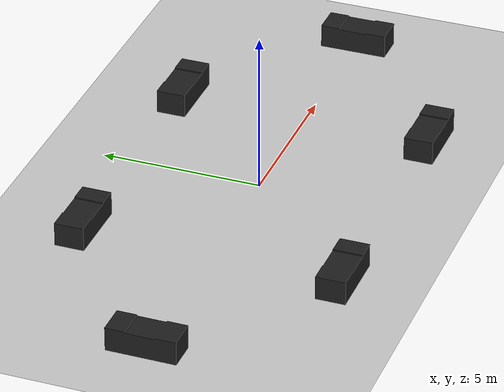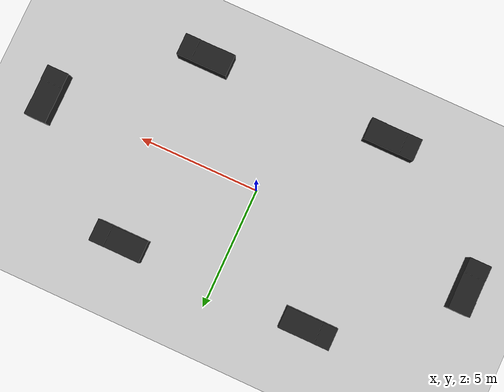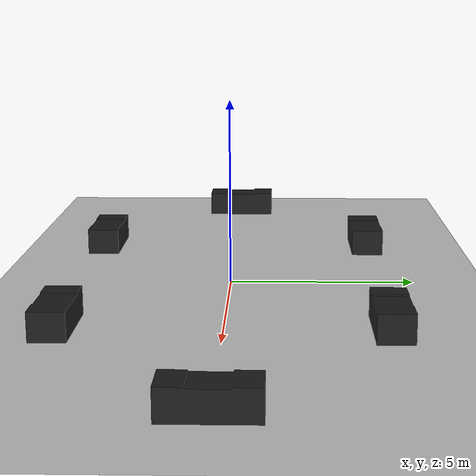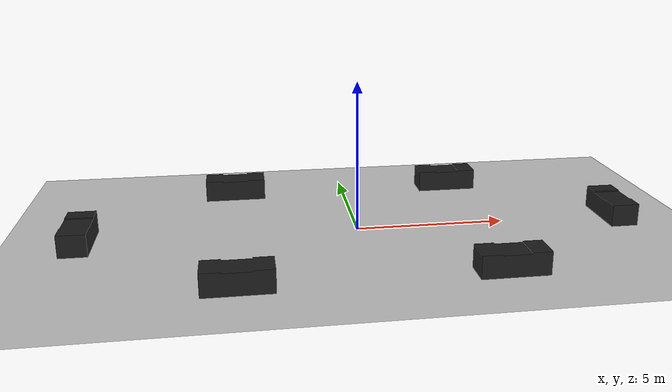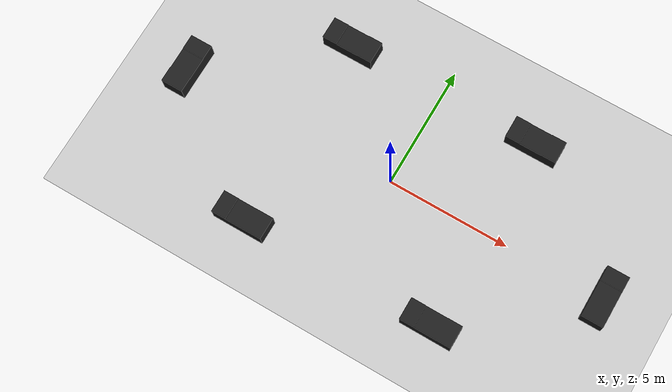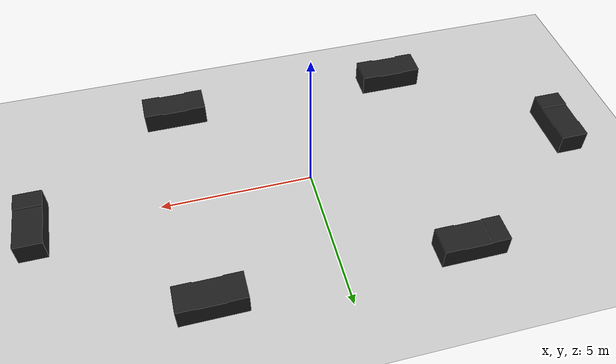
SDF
<?xml version="1.0"?>
<sdf version="1.6">
  <world name="default">

    <include>
      <uri>model://ground_plane</uri>
    </include>

    <include>
      <uri>model://sun</uri>
    </include>

    <scene>
      <shadows>false</shadows>
    </scene>

    <gui fullscreen='0'>
      <camera name='user_camera'>
        <pose frame=''>0.319654 -0.235002 9.29441 0 1.5138 0.009599</pose>
        <view_controller>orbit</view_controller>
        <projection_type>perspective</projection_type>
      </camera>
    </gui>

    <physics type="ode">
      <real_time_update_rate>1000.0</real_time_update_rate>
      <max_step_size>0.001</max_step_size>
      <real_time_factor>1</real_time_factor>
      <ode>
        <solver>
          <type>quick</type>
          <iters>150</iters>
          <precon_iters>0</precon_iters>
          <sor>1.400000</sor>
          <use_dynamic_moi_rescaling>1</use_dynamic_moi_rescaling>
        </solver>
        <constraints>
          <cfm>0.00001</cfm>
          <erp>0.2</erp>
          <contact_max_correcting_vel>2000.000000</contact_max_correcting_vel>
          <contact_surface_layer>0.01000</contact_surface_layer>
        </constraints>
      </ode>
    </physics>

    <model name="workstation1">
      <static>1</static>
      <include>
        <uri>model://workstation</uri>
        <pose> 4 4 0 0 0 0 </pose>
      </include>
    </model>

    <model name="workstation2">
      <static>1</static>
      <include>
        <uri>model://workstation</uri>
        <pose> 4 -4 0 0 0 0 </pose>
      </include>
    </model>

     <model name="workstation3">
      <static>1</static>
      <include>
        <uri>model://workstation</uri>
        <pose> -4 4 0 0 0 0 </pose>
      </include>
    </model>

    <model name="workstation4">
      <static>1</static>
      <include>
        <uri>model://workstation</uri>
        <pose> -4 -4 0 0 0 0 </pose>
      </include>
    </model>

    <model name="workstation5">
      <static>1</static>
      <include>
        <uri>model://workstation</uri>
        <pose> 9 0 0 0 0 1.57 </pose>
      </include>
    </model>

    <model name="workstation6">
      <static>1</static>
      <include>
        <uri>model://workstation</uri>
        <pose> -9 0 0 0 0 1.57 </pose>
      </include>
    </model>

  </world>
</sdf>

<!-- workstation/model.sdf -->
<sdf version="1.5">
  <model name="workstation">
    <static>true</static>
    <link name="link">
      <collision name="collision">
        <geometry>
          <mesh>
            <uri>model://workstation/meshes/workstation.obj</uri>
            <scale>1 1 1</scale>
          </mesh>
        </geometry>
        <surface>
          <friction>
            <ode>
              <mu>100</mu>
              <mu2>50</mu2>
            </ode>
          </friction>
        </surface>
      </collision>
      <visual name="visual">
        <geometry>
          <mesh>
            <uri>model://workstation/meshes/workstation.obj</uri>
            <scale>1 1 1</scale>
          </mesh>
        </geometry>
        <material>
          <script>
            <uri>file://media/materials/scripts/gazebo.material</uri>
            <name>Gazebo/Black</name>
          </script>
        </material>
      </visual>
    </link>
  </model>
</sdf>
